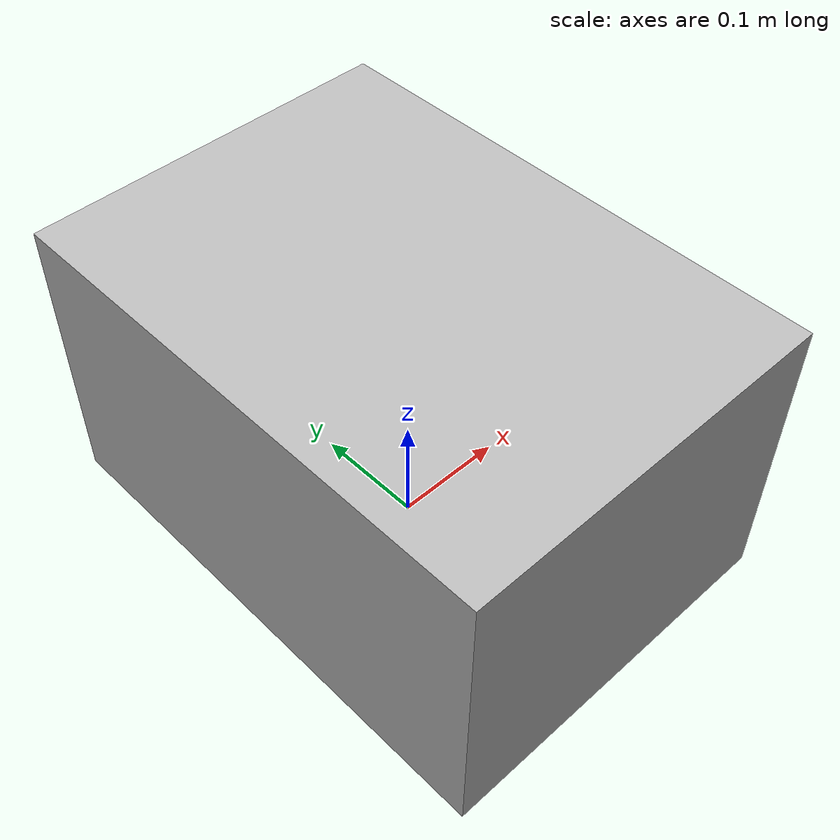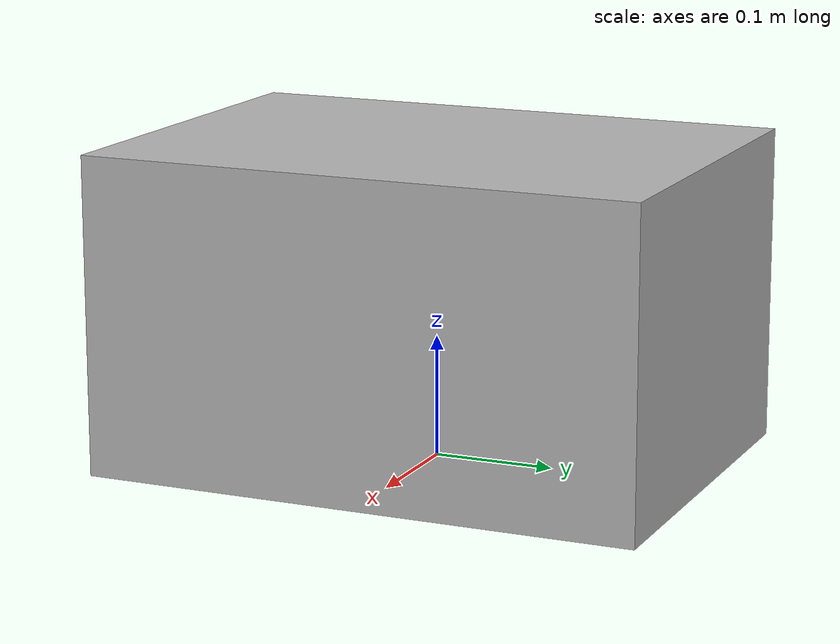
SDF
<?xml version="1.0" ?>
<sdf version="1.6">
  <model name="rwc2023/microwave">
    <static>true</static>
    <link name="1_link">
      <collision name="1_col">
        <geometry>
          <box>
            <size>0.33 0.46 0.26</size>
          </box>
        </geometry>
      </collision>
      <visual name="1_vis">
        <geometry>
          <box>
            <size>0.33 0.46 0.26</size>
          </box>
        </geometry>
      </visual>
      <pose>0.0 0.0 0.13 0 0 0</pose>
    </link>
    <link name="on_top_of">
      <virtual_volume name="on_top_of_vv">
        <geometry>
          <box>
            <size>0.31 0.4 0.25</size>
          </box>
        </geometry>
        <pose>0.0 0.0 0.405 0 0 0</pose>
      </virtual_volume>
    </link>
  </model>
</sdf>
